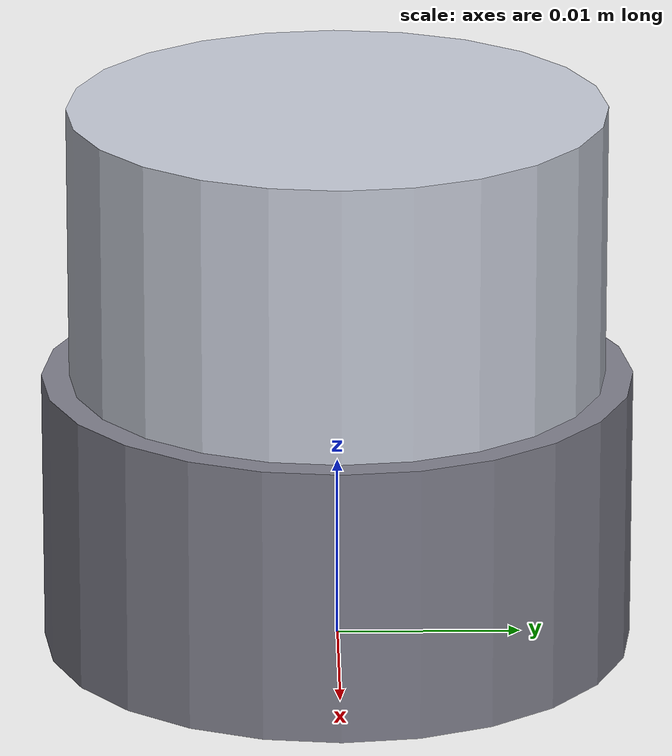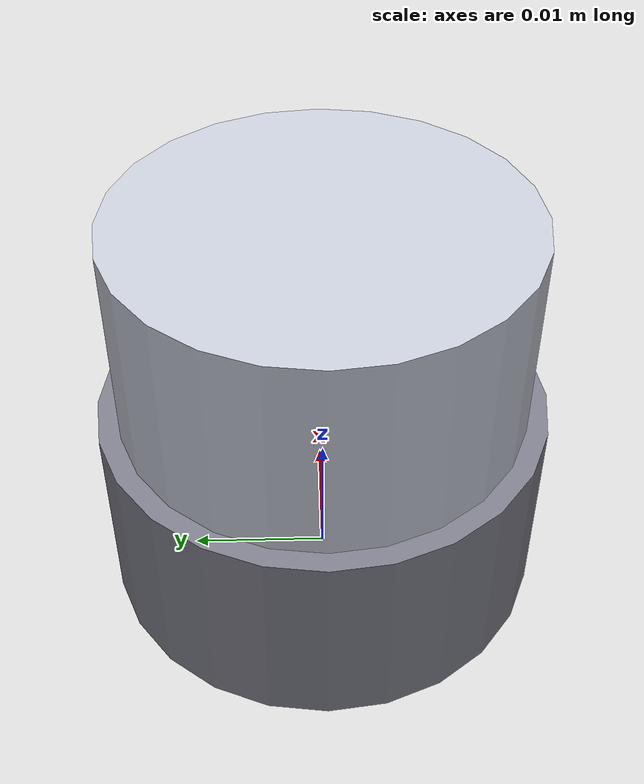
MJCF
<mujoco model="Switch_2">
  <asset>
    <material name="Switch_2_base" rgba="0.5 0.5 0.55 1"/>
    <material name="Switch_2_button" rgba="0.78 0.80 0.85 1"/>
  </asset>
  <worldbody>
    <body name="Switch_2">
      <geom name="Switch_2_base" type="cylinder"
            pos="0 0 0.0075" size="0.016 0.0075"
            material="Switch_2_base"/>
      <geom name="Switch_2_button" type="cylinder"
            pos="0 0 0.015" size="0.0145 0.015"
            material="Switch_2_button"/>
    </body>
  </worldbody>
</mujoco>
